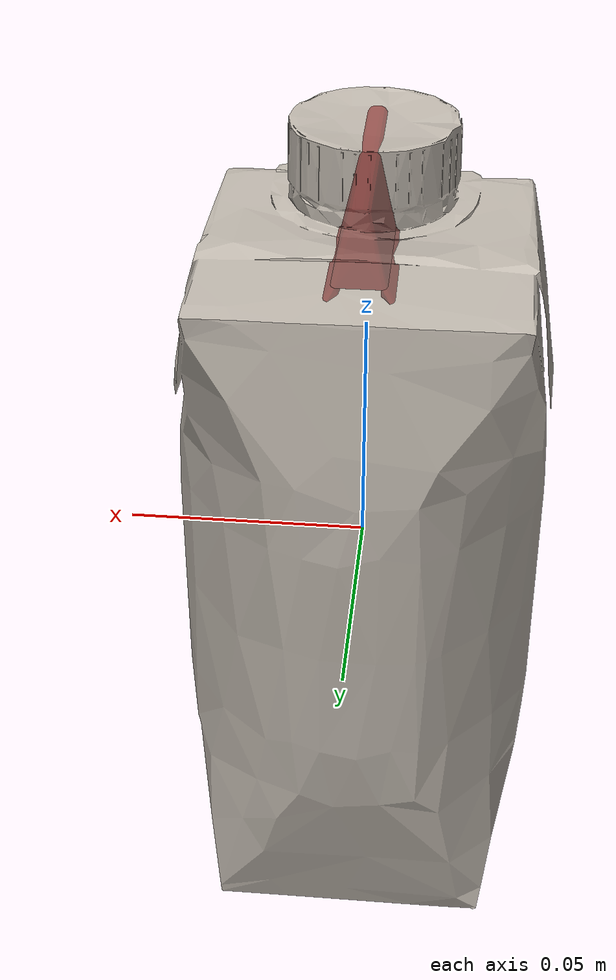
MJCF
<?xml version='1.0' encoding='utf-8'?>
<mujoco model="milk_21">
  <asset>
    <mesh file="visual/model_normalized_0.obj" name="model_normalized_0_vis" scale="0.16999999999999996 0.16999999999999996 0.16999999999999996" refquat="1.0 0.0 0.0 0.0" />
    <texture type="2d" name="image0" file="visual/image0.png" />
    <material name="lambert1.004" texture="image0" specular="0.5" shininess="0.25" />
    <mesh file="collision/collision_mesh_collision_0.obj" name="milk_collision_mesh_0" scale="0.16999999999999996 0.16999999999999996 0.16999999999999996" refquat="1.0 0.0 0.0 0.0" />
    <mesh file="collision/collision_mesh_collision_1.obj" name="milk_collision_mesh_1" scale="0.16999999999999996 0.16999999999999996 0.16999999999999996" refquat="1.0 0.0 0.0 0.0" />
    <mesh file="collision/collision_mesh_collision_2.obj" name="milk_collision_mesh_2" scale="0.16999999999999996 0.16999999999999996 0.16999999999999996" refquat="1.0 0.0 0.0 0.0" />
    <mesh file="collision/collision_mesh_collision_3.obj" name="milk_collision_mesh_3" scale="0.16999999999999996 0.16999999999999996 0.16999999999999996" refquat="1.0 0.0 0.0 0.0" />
    <mesh file="collision/collision_mesh_collision_4.obj" name="milk_collision_mesh_4" scale="0.16999999999999996 0.16999999999999996 0.16999999999999996" refquat="1.0 0.0 0.0 0.0" />
    <mesh file="collision/collision_mesh_collision_5.obj" name="milk_collision_mesh_5" scale="0.16999999999999996 0.16999999999999996 0.16999999999999996" refquat="1.0 0.0 0.0 0.0" />
    <mesh file="collision/collision_mesh_collision_6.obj" name="milk_collision_mesh_6" scale="0.16999999999999996 0.16999999999999996 0.16999999999999996" refquat="1.0 0.0 0.0 0.0" />
    <mesh file="collision/collision_mesh_collision_7.obj" name="milk_collision_mesh_7" scale="0.16999999999999996 0.16999999999999996 0.16999999999999996" refquat="1.0 0.0 0.0 0.0" />
  </asset>
  <default>
    <default class="region">
      <geom group="1" conaffinity="0" contype="0" rgba="0 1 0 0" mass="0" />
    </default>
    <default class="collision">
      <geom group="0" rgba="0.5 0 0 0.5" density="1492.213956109" />
    </default>
  </default>
  <worldbody>
    <body>
      <body name="object">
        <geom solimp="0.998 0.998 0.001" solref="0.001 1" density="149.221395611" friction="0.95 0.3 0.1" type="mesh" mesh="model_normalized_0_vis" conaffinity="0" contype="0" group="1" material="lambert1.004" />
        <geom class="region" name="reg_bbox" type="box" pos="0.0 0.0 5.593000000000402e-06" size="0.024193765899999994 0.024193765899999994 0.08499290249999998" />
        <geom mesh="milk_collision_mesh_0" type="mesh" class="collision" />
        <geom mesh="milk_collision_mesh_1" type="mesh" class="collision" />
        <geom mesh="milk_collision_mesh_2" type="mesh" class="collision" />
        <geom mesh="milk_collision_mesh_3" type="mesh" class="collision" />
        <geom mesh="milk_collision_mesh_4" type="mesh" class="collision" />
        <geom mesh="milk_collision_mesh_5" type="mesh" class="collision" />
        <geom mesh="milk_collision_mesh_6" type="mesh" class="collision" />
        <geom mesh="milk_collision_mesh_7" type="mesh" class="collision" />
      </body>
    </body>
  </worldbody>
</mujoco>
